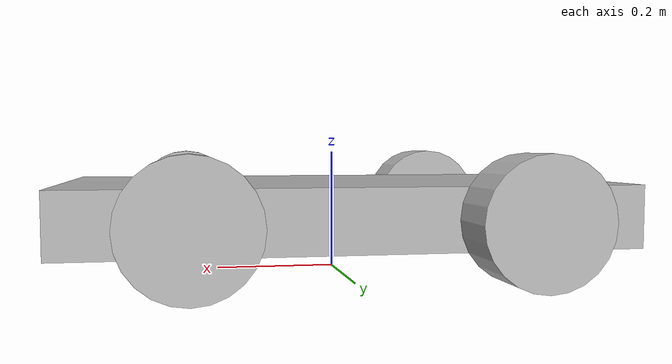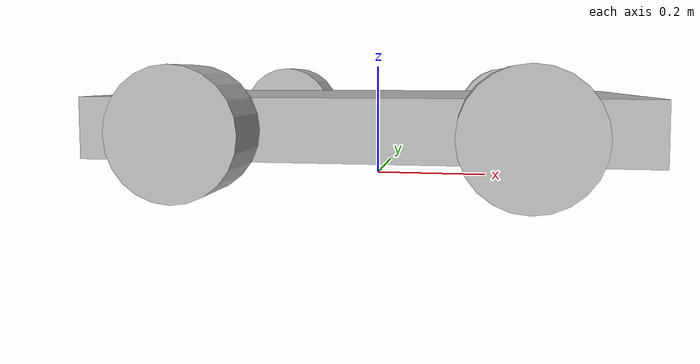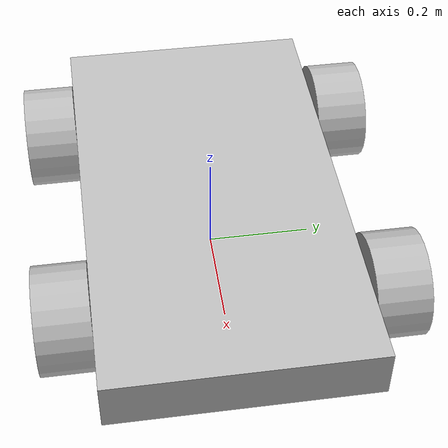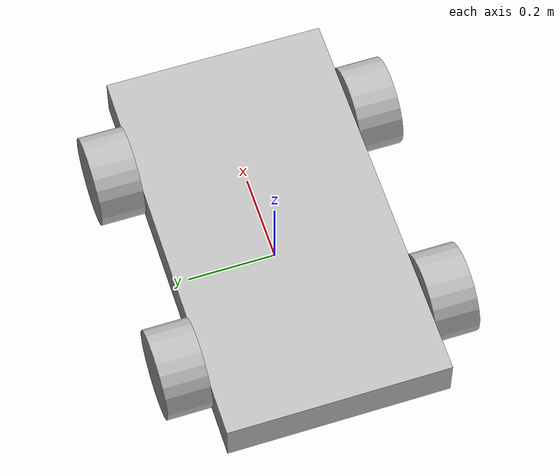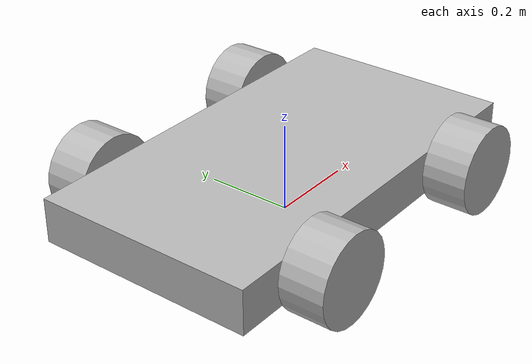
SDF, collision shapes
<?xml version="1.0"?>
<sdf version="1.9">
  <model name='ugv_diff'>
    <link name='base_link'>
      <pose relative_to='__model__'>0 0 0.1 0 0 0</pose>
      <inertial>
        <mass>6.0</mass>
        <pose>0 0 0 0 0 0</pose>
        <inertia>
          <ixx>0.12</ixx><ixy>0</ixy><ixz>0</ixz>
          <iyy>0.20</iyy><iyz>0</iyz><izz>0.28</izz>
        </inertia>
      </inertial>
      <visual name='visual'>
        <pose>0 0 -0.05 0 0 0</pose>
        <geometry>
          <mesh>
            <uri>model://rover_differential/meshes/rover_differential_base.dae</uri>
          </mesh>
        </geometry>
      </visual>
      <collision name='collision'>
        <geometry>
          <box><size>0.9 0.5 0.1</size></box>
        </geometry>
      </collision>
    </link>

    <!-- Four wheels: FL, FR, RL, RR. Left pair and right pair driven together. -->
    <!-- front_left -->
    <link name='wheel_fl_link'>
      <pose relative_to="base_link">0.25 0.3 0 -1.5707 0 0</pose>
      <inertial><mass>0.5</mass>
        <inertia><ixx>0.000807</ixx><ixy>0</ixy><ixz>0</ixz><iyy>0.000807</iyy><iyz>0</iyz><izz>0.0014</izz></inertia>
      </inertial>
      <visual name='visual'><geometry><mesh><uri>model://rover_differential/meshes/rover_differential_wheel.dae</uri></mesh></geometry></visual>
      <collision name='collision'>
        <geometry><cylinder><radius>0.1</radius><length>0.1</length></cylinder></geometry>
        <surface><friction><ode><mu>1.2</mu><mu2>0.6</mu2><fdir1>1 0 0</fdir1></ode></friction></surface>
      </collision>
    </link>
    <!-- front_right -->
    <link name='wheel_fr_link'>
      <pose relative_to="base_link">0.25 -0.3 0 -1.5707 0 0</pose>
      <inertial><mass>0.5</mass>
        <inertia><ixx>0.000807</ixx><ixy>0</ixy><ixz>0</ixz><iyy>0.000807</iyy><iyz>0</iyz><izz>0.0014</izz></inertia>
      </inertial>
      <visual name='visual'><geometry><mesh><uri>model://rover_differential/meshes/rover_differential_wheel.dae</uri></mesh></geometry></visual>
      <collision name='collision'>
        <geometry><cylinder><radius>0.1</radius><length>0.1</length></cylinder></geometry>
        <surface><friction><ode><mu>1.2</mu><mu2>0.6</mu2><fdir1>1 0 0</fdir1></ode></friction></surface>
      </collision>
    </link>
    <!-- rear_left -->
    <link name='wheel_rl_link'>
      <pose relative_to="base_link">-0.25 0.3 0 -1.5707 0 0</pose>
      <inertial><mass>0.5</mass>
        <inertia><ixx>0.000807</ixx><ixy>0</ixy><ixz>0</ixz><iyy>0.000807</iyy><iyz>0</iyz><izz>0.0014</izz></inertia>
      </inertial>
      <visual name='visual'><geometry><mesh><uri>model://rover_differential/meshes/rover_differential_wheel.dae</uri></mesh></geometry></visual>
      <collision name='collision'>
        <geometry><cylinder><radius>0.1</radius><length>0.1</length></cylinder></geometry>
        <surface><friction><ode><mu>1.2</mu><mu2>0.6</mu2><fdir1>1 0 0</fdir1></ode></friction></surface>
      </collision>
    </link>
    <!-- rear_right -->
    <link name='wheel_rr_link'>
      <pose relative_to="base_link">-0.25 -0.3 0 -1.5707 0 0</pose>
      <inertial><mass>0.5</mass>
        <inertia><ixx>0.000807</ixx><ixy>0</ixy><ixz>0</ixz><iyy>0.000807</iyy><iyz>0</iyz><izz>0.0014</izz></inertia>
      </inertial>
      <visual name='visual'><geometry><mesh><uri>model://rover_differential/meshes/rover_differential_wheel.dae</uri></mesh></geometry></visual>
      <collision name='collision'>
        <geometry><cylinder><radius>0.1</radius><length>0.1</length></cylinder></geometry>
        <surface><friction><ode><mu>1.2</mu><mu2>0.6</mu2><fdir1>1 0 0</fdir1></ode></friction></surface>
      </collision>
    </link>

    <joint name='wheel_fl_joint' type='revolute'>
      <pose relative_to='wheel_fl_link'/>
      <parent>base_link</parent><child>wheel_fl_link</child>
      <axis><xyz expressed_in='__model__'>0 1 0</xyz>
        <limit><lower>-1e16</lower><upper>1e16</upper></limit></axis>
    </joint>
    <joint name='wheel_fr_joint' type='revolute'>
      <pose relative_to='wheel_fr_link'/>
      <parent>base_link</parent><child>wheel_fr_link</child>
      <axis><xyz expressed_in='__model__'>0 1 0</xyz>
        <limit><lower>-1e16</lower><upper>1e16</upper></limit></axis>
    </joint>
    <joint name='wheel_rl_joint' type='revolute'>
      <pose relative_to='wheel_rl_link'/>
      <parent>base_link</parent><child>wheel_rl_link</child>
      <axis><xyz expressed_in='__model__'>0 1 0</xyz>
        <limit><lower>-1e16</lower><upper>1e16</upper></limit></axis>
    </joint>
    <joint name='wheel_rr_joint' type='revolute'>
      <pose relative_to='wheel_rr_link'/>
      <parent>base_link</parent><child>wheel_rr_link</child>
      <axis><xyz expressed_in='__model__'>0 1 0</xyz>
        <limit><lower>-1e16</lower><upper>1e16</upper></limit></axis>
    </joint>

    <plugin filename="gz-sim-diff-drive-system" name="gz::sim::systems::DiffDrive">
      <left_joint>wheel_fl_joint</left_joint>
      <left_joint>wheel_rl_joint</left_joint>
      <right_joint>wheel_fr_joint</right_joint>
      <right_joint>wheel_rr_joint</right_joint>
      <wheel_separation>0.6</wheel_separation>
      <wheel_radius>0.1</wheel_radius>
      <max_linear_acceleration>1.5</max_linear_acceleration>
      <topic>/ugv/cmd_vel</topic>
      <odom_topic>/ugv/wheel_odom</odom_topic>
      <frame_id>odom</frame_id>
      <child_frame_id>base_link</child_frame_id>
    </plugin>

    <!-- Ground-truth planar odometry (accurate under skid), relative to spawn. -->
    <plugin filename="gz-sim-odometry-publisher-system" name="gz::sim::systems::OdometryPublisher">
      <odom_frame>odom</odom_frame>
      <robot_base_frame>base_link</robot_base_frame>
      <odom_topic>/ugv/odom</odom_topic>
      <dimensions>2</dimensions>
      <odom_publish_frequency>50</odom_publish_frequency>
    </plugin>
  </model>
</sdf>
